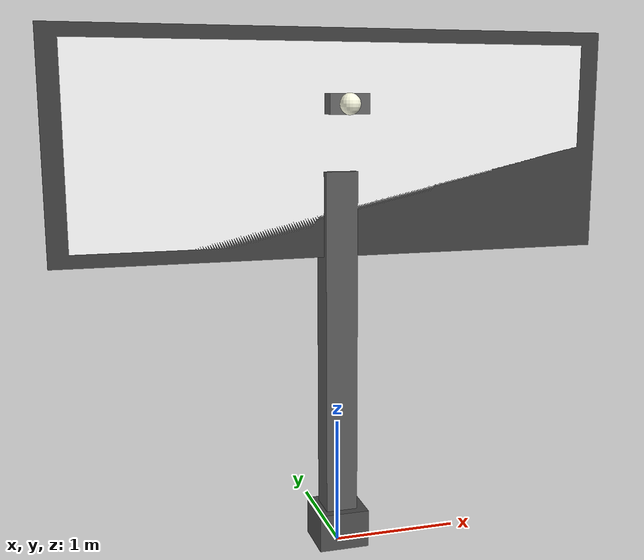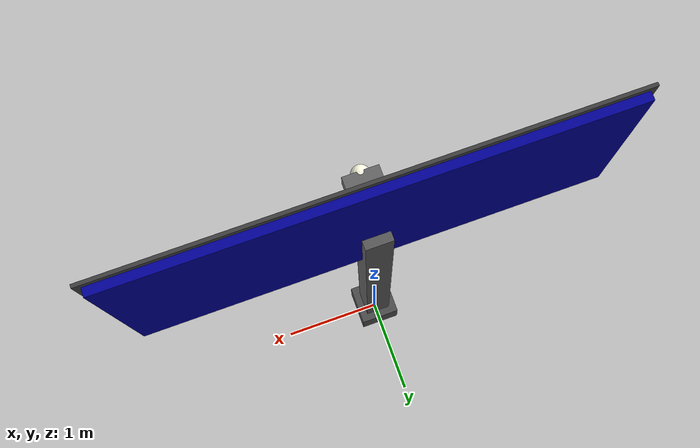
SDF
<?xml version="1.0"?>

<sdf version="1.10">

<model name="name_board">

  <static>true</static>

  <link name="board">

    <!-- MAIN SUPPORT POLE -->
    <visual name="pole_main">
      <pose>0 0 1.5 0 0 0</pose>
      <geometry>
        <box>
          <size>0.25 0.25 3</size>
        </box>
      </geometry>
      <material>
        <ambient>0.25 0.25 0.25 1</ambient>
        <diffuse>0.35 0.35 0.35 1</diffuse>
        <specular>0.1 0.1 0.1 1</specular>
      </material>
    </visual>

    <!-- Pole base foot -->
    <visual name="pole_base">
      <pose>0 0 0.15 0 0 0</pose>
      <geometry>
        <box>
          <size>0.4 0.4 0.3</size>
        </box>
      </geometry>
      <material>
        <ambient>0.2 0.2 0.2 1</ambient>
        <diffuse>0.3 0.3 0.3 1</diffuse>
      </material>
    </visual>

    <!-- INFORMATION SIGN BOARD -->
    <visual name="sign_main">
      <pose>0 0 3.2 0 0 0</pose>
      <geometry>
        <box>
          <size>4.2 0.08 1.6</size>
        </box>
      </geometry>
      <material>
        <ambient>0 0 0.5 1</ambient>
        <diffuse>0 0 0.6 1</diffuse>
        <specular>0.3 0.3 0.3 1</specular>
      </material>
    </visual>

    <!-- White text area background -->
    <visual name="sign_text_area">
      <pose>0 -0.04 3.2 0 0 0</pose>
      <geometry>
        <box>
          <size>4 0.05 1.5</size>
        </box>
      </geometry>
      <material>
        <ambient>0.95 0.95 0.95 1</ambient>
        <diffuse>1 1 1 1</diffuse>
      </material>
    </visual>

    <!-- Sign border frame -->
    <visual name="sign_border">
      <pose>0 -0.05 3.2 0 0 0</pose>
      <geometry>
        <box>
          <size>4.3 0.03 1.7</size>
        </box>
      </geometry>
      <material>
        <ambient>0.15 0.15 0.15 1</ambient>
        <diffuse>0.25 0.25 0.25 1</diffuse>
      </material>
    </visual>

    <!-- LIGHT FIXTURE (NIGHT ILLUMINATION) -->
    <visual name="light_fixture">
      <pose>0 -0.25 3.5 0 0 0</pose>
      <geometry>
        <box>
          <size>0.3 0.15 0.15</size>
        </box>
      </geometry>
      <material>
        <ambient>0.3 0.3 0.3 1</ambient>
        <diffuse>0.4 0.4 0.4 1</diffuse>
      </material>
    </visual>

    <visual name="light_bulb">
      <pose>0 -0.32 3.5 0 0 0</pose>
      <geometry>
        <sphere>
          <radius>0.08</radius>
        </sphere>
      </geometry>
      <material>
        <ambient>1 1 0.8 1</ambient>
        <diffuse>1 1 0.9 1</diffuse>
        <emissive>0.8 0.8 0.6 0.5</emissive>
      </material>
    </visual>

  </link>

</model>

</sdf>
